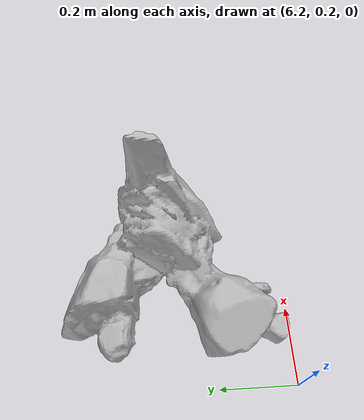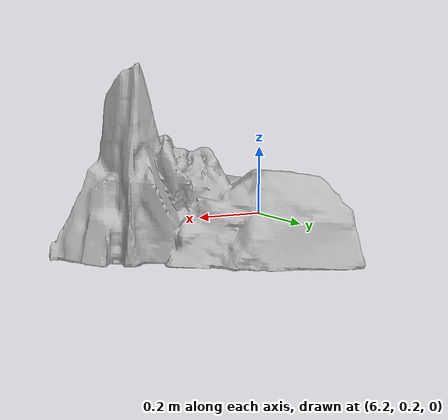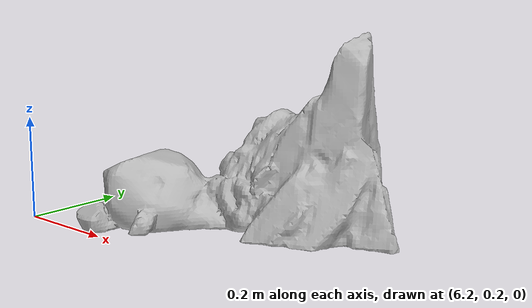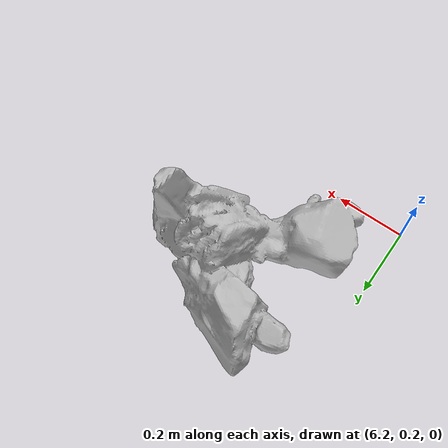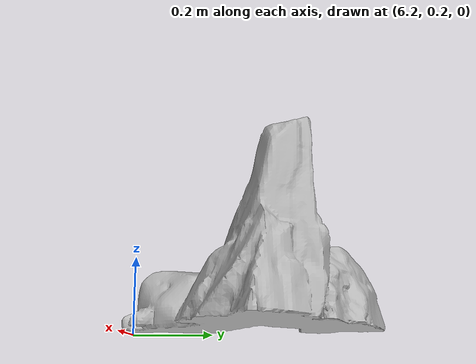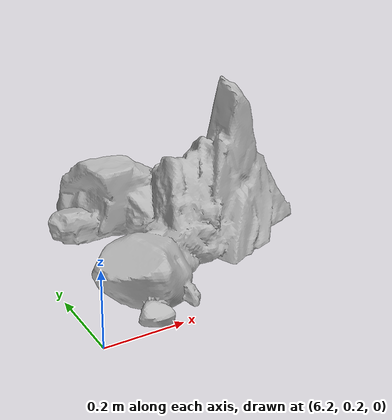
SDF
<?xml version="1.0"?>

<sdf version="1.9">

  <model name="martian_rock_02">

    <static>true</static>

    <link name="rock">

      <visual name="visual">

        <geometry>
          <mesh>
            <uri>meshes/martian_rock_02.dae</uri>
          </mesh>
        </geometry>

      </visual>

      <collision name="collision">

        <geometry>
          <mesh>
            <uri>meshes/martian_rock_02.dae</uri>
          </mesh>
        </geometry>

      </collision>

    </link>

  </model>

</sdf>
